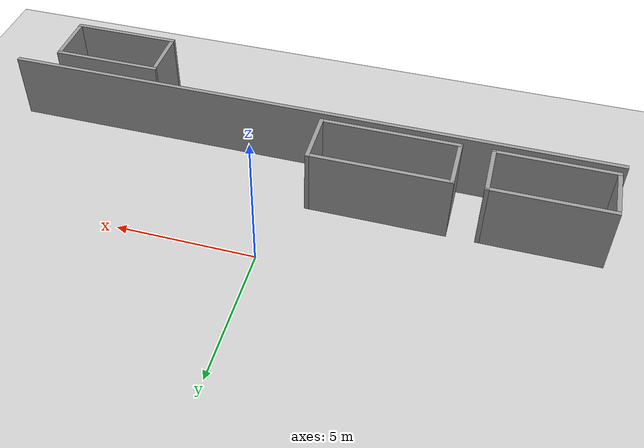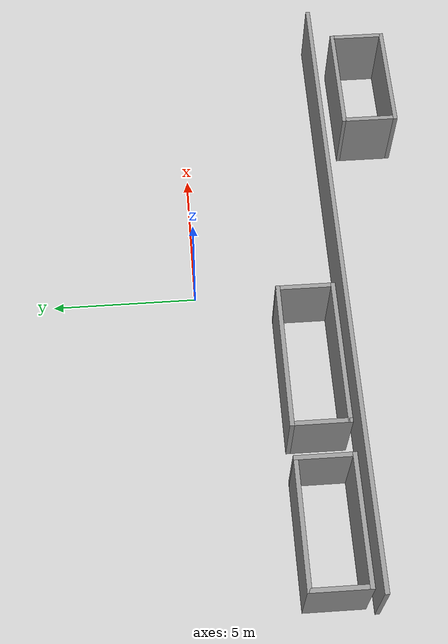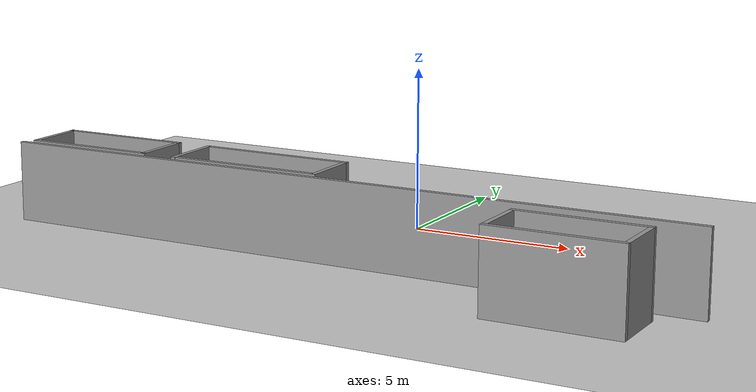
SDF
<sdf version="1.7">
 <world name="default">
  <light name="sun" type="directional">
   <pose>0 0 10 0 -0 0</pose>
   <diffuse>0.8 0.8 0.8 1</diffuse>
   <specular>0.2 0.2 0.2 1</specular>
   <attenuation>
    <range>1000</range>
    <constant>0.9</constant>
    <linear>0.01</linear>
    <quadratic>0.001</quadratic>
   </attenuation>
   <direction>-0.5 0.1 -0.9</direction>
   <spot><inner_angle>0</inner_angle><outer_angle>0</outer_angle><falloff>0</falloff></spot>
  </light>
  <model name="ground_plane">
   <static>1</static>
   <link name="link">
    <collision name="collision">
     <geometry><plane><normal>0 0 1</normal><size>100 100</size></plane></geometry>
     <surface><friction><ode><mu>100</mu><mu2>50</mu2></ode></friction></surface>
    </collision>
    <visual name="visual">
     <cast_shadows>0</cast_shadows>
     <geometry><plane><normal>0 0 1</normal><size>100 100</size></plane></geometry>
     <material>
      <script><uri>file://media/materials/scripts/gazebo.material</uri><name>Gazebo/Grey</name></script>
     </material>
    </visual>
   </link>
  </model>
  <gravity>0 0 -9.8</gravity>
  <magnetic_field>6e-06 2.3e-05 -4.2e-05</magnetic_field>
  <atmosphere type="adiabatic"/>
  <physics type="ode">
   <max_step_size>0.001</max_step_size>
   <real_time_factor>1</real_time_factor>
   <real_time_update_rate>1000</real_time_update_rate>
  </physics>
  <scene><ambient>0.4 0.4 0.4 1</ambient><background>0.7 0.7 0.7 1</background><shadows>1</shadows></scene>
  <spherical_coordinates>
   <surface_model>EARTH_WGS84</surface_model>
   <latitude_deg>0</latitude_deg>
   <longitude_deg>0</longitude_deg>
   <elevation>0</elevation>
   <heading_deg>0</heading_deg>
  </spherical_coordinates>
  <audio><device>default</device></audio>
  <model name="model_prius_0">
   <pose>-0.23593 -3.04914 -0 0 -0 0</pose>
   <link name="Wall_17">
    <collision name="Wall_17_Collision">
     <geometry><box><size>22.25 0.15 2.5</size></box></geometry>
     <pose>0 0 1.25 0 -0 0</pose>
    </collision>
    <visual name="Wall_17_Visual">
     <pose>0 0 1.25 0 -0 0</pose>
     <geometry><box><size>22.25 0.15 2.5</size></box></geometry>
     <material>
      <script><uri>file://media/materials/scripts/gazebo.material</uri><name>Gazebo/Grey</name></script>
      <ambient>1 1 1 1</ambient>
     </material>
     <meta><layer>0</layer></meta>
    </visual>
    <pose>-0 -1.93339 0 0 -0 0</pose>
   </link>
   <link name="Wall_19">
    <collision name="Wall_19_Collision">
     <geometry><box><size>4.25 0.15 2.5</size></box></geometry>
     <pose>0 0 1.25 0 -0 0</pose>
    </collision>
    <visual name="Wall_19_Visual">
     <pose>0 0 1.25 0 -0 0</pose>
     <geometry><box><size>4.25 0.15 2.5</size></box></geometry>
     <material>
      <script><uri>file://media/materials/scripts/gazebo.material</uri><name>Gazebo/Grey</name></script>
      <ambient>1 1 1 1</ambient>
     </material>
     <meta><layer>0</layer></meta>
    </visual>
    <pose>-8.81898 -1.53112 0 0 -0 0</pose>
   </link>
   <link name="Wall_20">
    <collision name="Wall_20_Collision">
     <geometry><box><size>2 0.15 2.5</size></box></geometry>
     <pose>0 0 1.25 0 -0 0</pose>
    </collision>
    <visual name="Wall_20_Visual">
     <pose>0 0 1.25 0 -0 0</pose>
     <geometry><box><size>2 0.15 2.5</size></box></geometry>
     <material>
      <script><uri>file://media/materials/scripts/gazebo.material</uri><name>Gazebo/Grey</name></script>
      <ambient>1 1 1 1</ambient>
     </material>
     <meta><layer>0</layer></meta>
    </visual>
    <pose>-6.76898 -0.606117 0 0 -0 1.5708</pose>
   </link>
   <link name="Wall_21">
    <collision name="Wall_21_Collision">
     <geometry><box><size>4.25 0.15 2.5</size></box></geometry>
     <pose>0 0 1.25 0 -0 0</pose>
    </collision>
    <visual name="Wall_21_Visual">
     <pose>0 0 1.25 0 -0 0</pose>
     <geometry><box><size>4.25 0.15 2.5</size></box></geometry>
     <material>
      <script><uri>file://media/materials/scripts/gazebo.material</uri><name>Gazebo/Grey</name></script>
      <ambient>1 1 1 1</ambient>
     </material>
     <meta><layer>0</layer></meta>
    </visual>
    <pose>-8.81898 0.318883 0 0 -0 3.14159</pose>
   </link>
   <link name="Wall_22">
    <collision name="Wall_22_Collision">
     <geometry><box><size>2 0.15 2.5</size></box></geometry>
     <pose>0 0 1.25 0 -0 0</pose>
    </collision>
    <visual name="Wall_22_Visual">
     <pose>0 0 1.25 0 -0 0</pose>
     <geometry><box><size>2 0.15 2.5</size></box></geometry>
     <material>
      <script><uri>file://media/materials/scripts/gazebo.material</uri><name>Gazebo/Grey</name></script>
      <ambient>1 1 1 1</ambient>
     </material>
     <meta><layer>0</layer></meta>
    </visual>
    <pose>-10.869 -0.606117 0 0 -0 -1.5708</pose>
   </link>
   <link name="Wall_24">
    <collision name="Wall_24_Collision">
     <geometry><box><size>5 0.15 2.5</size></box></geometry>
     <pose>0 0 1.25 0 -0 0</pose>
    </collision>
    <visual name="Wall_24_Visual">
     <pose>0 0 1.25 0 -0 0</pose>
     <geometry><box><size>5 0.15 2.5</size></box></geometry>
     <material>
      <script><uri>file://media/materials/scripts/gazebo.material</uri><name>Gazebo/Grey</name></script>
      <ambient>1 1 1 1</ambient>
     </material>
     <meta><layer>0</layer></meta>
    </visual>
    <pose>-3.21445 -1.53112 0 0 -0 0</pose>
   </link>
   <link name="Wall_25">
    <collision name="Wall_25_Collision">
     <geometry><box><size>2 0.15 2.5</size></box></geometry>
     <pose>0 0 1.25 0 -0 0</pose>
    </collision>
    <visual name="Wall_25_Visual">
     <pose>0 0 1.25 0 -0 0</pose>
     <geometry><box><size>2 0.15 2.5</size></box></geometry>
     <material>
      <script><uri>file://media/materials/scripts/gazebo.material</uri><name>Gazebo/Grey</name></script>
      <ambient>1 1 1 1</ambient>
     </material>
     <meta><layer>0</layer></meta>
    </visual>
    <pose>-0.78945 -0.606117 0 0 -0 1.5708</pose>
   </link>
   <link name="Wall_26">
    <collision name="Wall_26_Collision">
     <geometry><box><size>5 0.15 2.5</size></box></geometry>
     <pose>0 0 1.25 0 -0 0</pose>
    </collision>
    <visual name="Wall_26_Visual">
     <pose>0 0 1.25 0 -0 0</pose>
     <geometry><box><size>5 0.15 2.5</size></box></geometry>
     <material>
      <script><uri>file://media/materials/scripts/gazebo.material</uri><name>Gazebo/Grey</name></script>
      <ambient>1 1 1 1</ambient>
     </material>
     <meta><layer>0</layer></meta>
    </visual>
    <pose>-3.21445 0.318883 0 0 -0 3.14159</pose>
   </link>
   <link name="Wall_27">
    <collision name="Wall_27_Collision">
     <geometry><box><size>2 0.15 2.5</size></box></geometry>
     <pose>0 0 1.25 0 -0 0</pose>
    </collision>
    <visual name="Wall_27_Visual">
     <pose>0 0 1.25 0 -0 0</pose>
     <geometry><box><size>2 0.15 2.5</size></box></geometry>
     <material>
      <script><uri>file://media/materials/scripts/gazebo.material</uri><name>Gazebo/Grey</name></script>
      <ambient>1 1 1 1</ambient>
     </material>
     <meta><layer>0</layer></meta>
    </visual>
    <pose>-5.63945 -0.606117 0 0 -0 -1.5708</pose>
   </link>
   <link name="Wall_32">
    <collision name="Wall_32_Collision">
     <geometry><box><size>2.0 0.15 2.5</size></box></geometry>
     <pose>0 0 1.25 0 -0 0</pose>
    </collision>
    <visual name="Wall_32_Visual">
     <pose>0 0 1.25 0 -0 0</pose>
     <geometry><box><size>1.75 0.15 2.5</size></box></geometry>
     <material>
      <script><uri>file://media/materials/scripts/gazebo.material</uri><name>Gazebo/Grey</name></script>
      <ambient>1 1 1 1</ambient>
     </material>
     <meta><layer>0</layer></meta>
    </visual>
    <pose>5.96608 -3.65526 0 0 -0 1.5708</pose>
   </link>
   <link name="Wall_33">
    <collision name="Wall_33_Collision">
     <geometry><box><size>4 0.15 2.5</size></box></geometry>
     <pose>0 0 1.25 0 -0 0</pose>
    </collision>
    <visual name="Wall_33_Visual">
     <pose>0 0 1.25 0 -0 0</pose>
     <geometry><box><size>4 0.15 2.5</size></box></geometry>
     <material>
      <script><uri>file://media/materials/scripts/gazebo.material</uri><name>Gazebo/Grey</name></script>
      <ambient>1 1 1 1</ambient>
     </material>
     <meta><layer>0</layer></meta>
    </visual>
    <pose>7.89108 -2.73026 0 0 -0 0</pose>
   </link>
   <link name="Wall_34">
    <collision name="Wall_34_Collision">
     <geometry><box><size>2.0 0.15 2.5</size></box></geometry>
     <pose>0 0 1.25 0 -0 0</pose>
    </collision>
    <visual name="Wall_34_Visual">
     <pose>0 0 1.25 0 -0 0</pose>
     <geometry><box><size>1.75 0.15 2.5</size></box></geometry>
     <material>
      <script><uri>file://media/materials/scripts/gazebo.material</uri><name>Gazebo/Grey</name></script>
      <ambient>1 1 1 1</ambient>
     </material>
     <meta><layer>0</layer></meta>
    </visual>
    <pose>9.81608 -3.65526 0 0 -0 -1.5708</pose>
   </link>
   <link name="Wall_35">
    <collision name="Wall_35_Collision">
     <geometry><box><size>4 0.15 2.5</size></box></geometry>
     <pose>0 0 1.25 0 -0 0</pose>
    </collision>
    <visual name="Wall_35_Visual">
     <pose>0 0 1.25 0 -0 0</pose>
     <geometry><box><size>4 0.15 2.5</size></box></geometry>
     <material>
      <script><uri>file://media/materials/scripts/gazebo.material</uri><name>Gazebo/Grey</name></script>
      <ambient>1 1 1 1</ambient>
     </material>
     <meta><layer>0</layer></meta>
    </visual>
    <pose>7.89108 -4.58026 0 0 -0 3.14159</pose>
   </link>
   <static>1</static>
  </model>
 </world>
</sdf>
